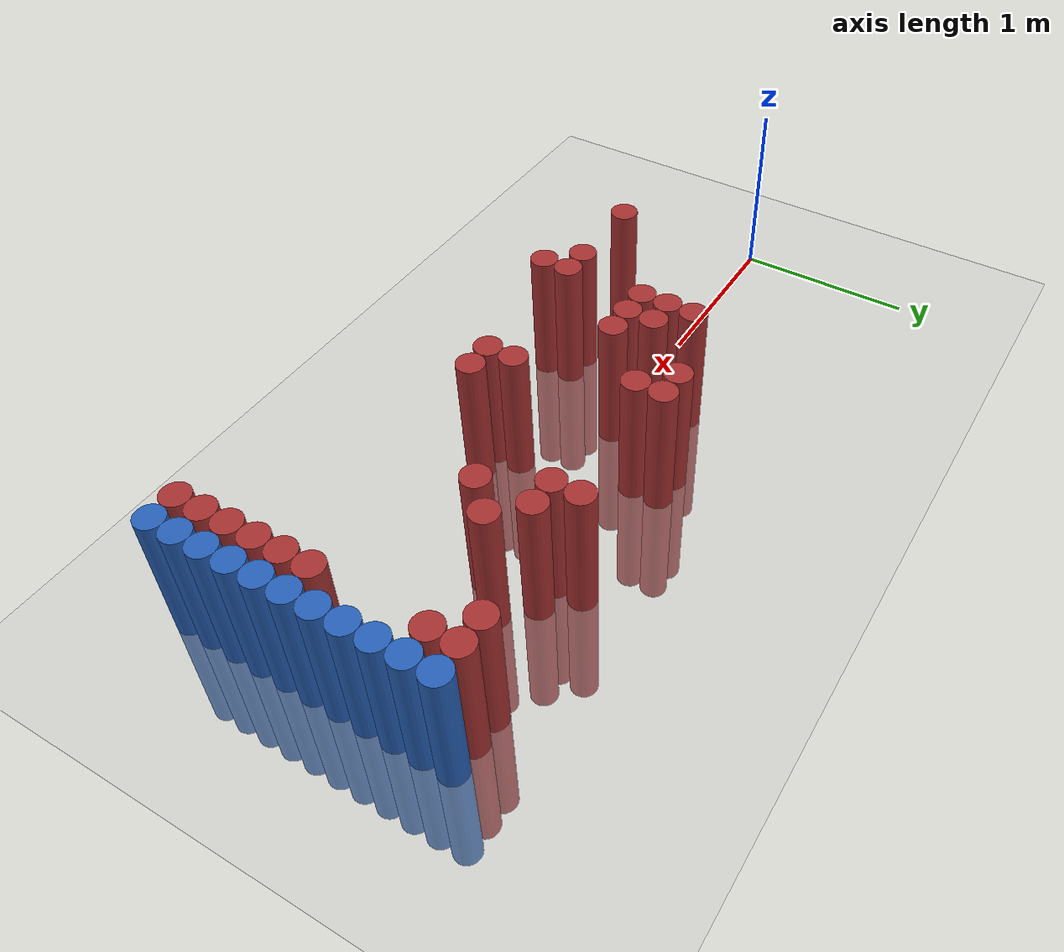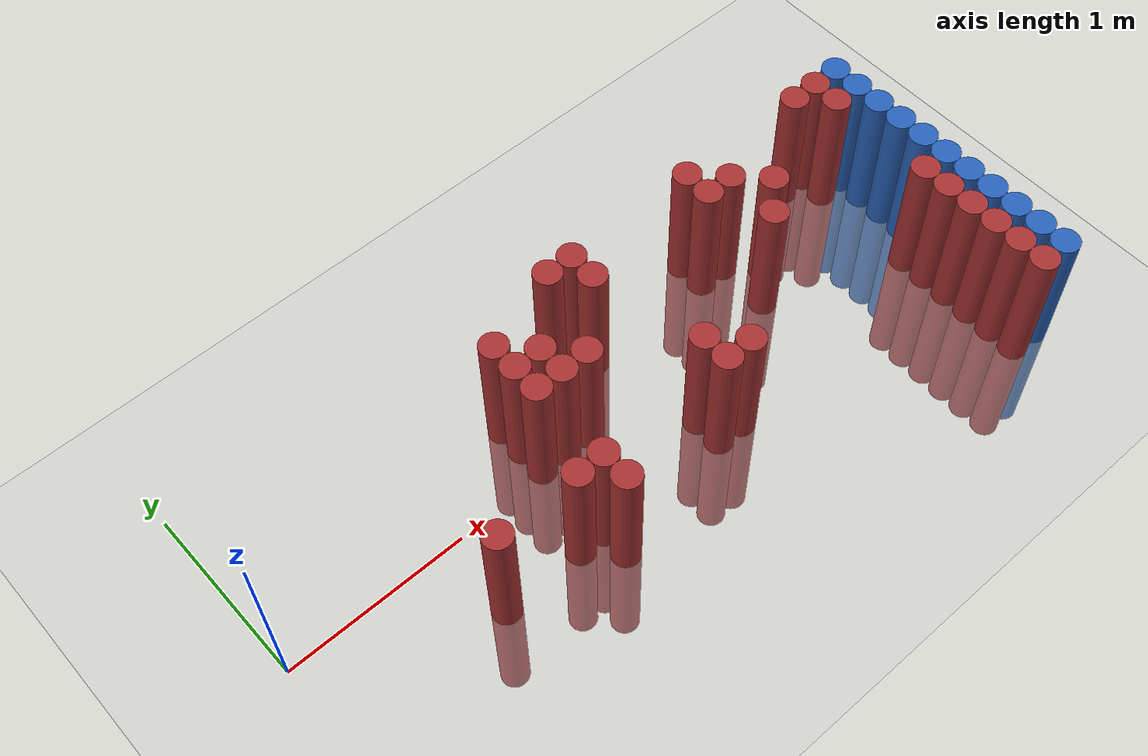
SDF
<sdf version="1.6">
 <world name="default">
  <model name="ground_plane">
   <static>1</static>
   <link name="link">
    <collision name="collision">
     <geometry><plane><normal>0 0 1</normal><size>100 100</size></plane></geometry>
     <surface><friction><ode><mu>100</mu><mu2>50</mu2></ode></friction></surface>
    </collision>
    <visual name="visual">
     <cast_shadows>0</cast_shadows>
     <geometry><plane><normal>0 0 1</normal><size>100 100</size></plane></geometry>
     <material>
      <script><uri>file://media/materials/scripts/gazebo.material</uri><name>Gazebo/Grey</name></script>
     </material>
    </visual>
   </link>
  </model>
  <model name="unit_cylinder_100">
   <static>1</static>
   <pose>3.925000 -1.025000 0.000000 0.000000 0.000000 0.000000</pose>
   <link name="link">
    <inertial>
     <mass>1</mass>
     <inertia><ixx>0.145833</ixx><ixy>0</ixy><ixz>0</ixz><iyy>0.145833</iyy><iyz>0</iyz><izz>0.125</izz></inertia>
    </inertial>
    <collision name="collision">
     <geometry><cylinder><radius>0.075000</radius><length>1.5</length></cylinder></geometry>
    </collision>
    <visual name="visual">
     <geometry><cylinder><radius>0.075000</radius><length>1.5</length></cylinder></geometry>
     <material>
      <ambient>0.152000 0.379000 0.720000 1</ambient>
      <diffuse>0.152000 0.379000 0.720000 1</diffuse>
     </material>
     <material>
      <script><name>Gazebo/Grey</name><uri>file://media/materials/scripts/gazebo.material</uri></script>
     </material>
    </visual>
   </link>
  </model>
  <model name="unit_cylinder_102">
   <static>1</static>
   <pose>3.925000 -0.875000 0.000000 0.000000 0.000000 0.000000</pose>
   <link name="link">
    <inertial>
     <mass>1</mass>
     <inertia><ixx>0.145833</ixx><ixy>0</ixy><ixz>0</ixz><iyy>0.145833</iyy><iyz>0</iyz><izz>0.125</izz></inertia>
    </inertial>
    <collision name="collision">
     <geometry><cylinder><radius>0.075000</radius><length>1.5</length></cylinder></geometry>
    </collision>
    <visual name="visual">
     <geometry><cylinder><radius>0.075000</radius><length>1.5</length></cylinder></geometry>
     <material>
      <ambient>0.152000 0.379000 0.720000 1</ambient>
      <diffuse>0.152000 0.379000 0.720000 1</diffuse>
     </material>
     <material>
      <script><name>Gazebo/Grey</name><uri>file://media/materials/scripts/gazebo.material</uri></script>
     </material>
    </visual>
   </link>
  </model>
  <model name="unit_cylinder_104">
   <static>1</static>
   <pose>3.925000 -0.725000 0.000000 0.000000 0.000000 0.000000</pose>
   <link name="link">
    <inertial>
     <mass>1</mass>
     <inertia><ixx>0.145833</ixx><ixy>0</ixy><ixz>0</ixz><iyy>0.145833</iyy><iyz>0</iyz><izz>0.125</izz></inertia>
    </inertial>
    <collision name="collision">
     <geometry><cylinder><radius>0.075000</radius><length>1.5</length></cylinder></geometry>
    </collision>
    <visual name="visual">
     <geometry><cylinder><radius>0.075000</radius><length>1.5</length></cylinder></geometry>
     <material>
      <ambient>0.152000 0.379000 0.720000 1</ambient>
      <diffuse>0.152000 0.379000 0.720000 1</diffuse>
     </material>
     <material>
      <script><name>Gazebo/Grey</name><uri>file://media/materials/scripts/gazebo.material</uri></script>
     </material>
    </visual>
   </link>
  </model>
  <model name="unit_cylinder_106">
   <static>1</static>
   <pose>3.925000 -0.575000 0.000000 0.000000 0.000000 0.000000</pose>
   <link name="link">
    <inertial>
     <mass>1</mass>
     <inertia><ixx>0.145833</ixx><ixy>0</ixy><ixz>0</ixz><iyy>0.145833</iyy><iyz>0</iyz><izz>0.125</izz></inertia>
    </inertial>
    <collision name="collision">
     <geometry><cylinder><radius>0.075000</radius><length>1.5</length></cylinder></geometry>
    </collision>
    <visual name="visual">
     <geometry><cylinder><radius>0.075000</radius><length>1.5</length></cylinder></geometry>
     <material>
      <ambient>0.152000 0.379000 0.720000 1</ambient>
      <diffuse>0.152000 0.379000 0.720000 1</diffuse>
     </material>
     <material>
      <script><name>Gazebo/Grey</name><uri>file://media/materials/scripts/gazebo.material</uri></script>
     </material>
    </visual>
   </link>
  </model>
  <model name="unit_cylinder_108">
   <static>1</static>
   <pose>3.925000 -0.425000 0.000000 0.000000 0.000000 0.000000</pose>
   <link name="link">
    <inertial>
     <mass>1</mass>
     <inertia><ixx>0.145833</ixx><ixy>0</ixy><ixz>0</ixz><iyy>0.145833</iyy><iyz>0</iyz><izz>0.125</izz></inertia>
    </inertial>
    <collision name="collision">
     <geometry><cylinder><radius>0.075000</radius><length>1.5</length></cylinder></geometry>
    </collision>
    <visual name="visual">
     <geometry><cylinder><radius>0.075000</radius><length>1.5</length></cylinder></geometry>
     <material>
      <ambient>0.152000 0.379000 0.720000 1</ambient>
      <diffuse>0.152000 0.379000 0.720000 1</diffuse>
     </material>
     <material>
      <script><name>Gazebo/Grey</name><uri>file://media/materials/scripts/gazebo.material</uri></script>
     </material>
    </visual>
   </link>
  </model>
  <model name="unit_cylinder_110">
   <static>1</static>
   <pose>3.925000 -0.275000 0.000000 0.000000 0.000000 0.000000</pose>
   <link name="link">
    <inertial>
     <mass>1</mass>
     <inertia><ixx>0.145833</ixx><ixy>0</ixy><ixz>0</ixz><iyy>0.145833</iyy><iyz>0</iyz><izz>0.125</izz></inertia>
    </inertial>
    <collision name="collision">
     <geometry><cylinder><radius>0.075000</radius><length>1.5</length></cylinder></geometry>
    </collision>
    <visual name="visual">
     <geometry><cylinder><radius>0.075000</radius><length>1.5</length></cylinder></geometry>
     <material>
      <ambient>0.152000 0.379000 0.720000 1</ambient>
      <diffuse>0.152000 0.379000 0.720000 1</diffuse>
     </material>
     <material>
      <script><name>Gazebo/Grey</name><uri>file://media/materials/scripts/gazebo.material</uri></script>
     </material>
    </visual>
   </link>
  </model>
  <model name="unit_cylinder_112">
   <static>1</static>
   <pose>3.925000 -0.125000 0.000000 0.000000 0.000000 0.000000</pose>
   <link name="link">
    <inertial>
     <mass>1</mass>
     <inertia><ixx>0.145833</ixx><ixy>0</ixy><ixz>0</ixz><iyy>0.145833</iyy><iyz>0</iyz><izz>0.125</izz></inertia>
    </inertial>
    <collision name="collision">
     <geometry><cylinder><radius>0.075000</radius><length>1.5</length></cylinder></geometry>
    </collision>
    <visual name="visual">
     <geometry><cylinder><radius>0.075000</radius><length>1.5</length></cylinder></geometry>
     <material>
      <ambient>0.152000 0.379000 0.720000 1</ambient>
      <diffuse>0.152000 0.379000 0.720000 1</diffuse>
     </material>
     <material>
      <script><name>Gazebo/Grey</name><uri>file://media/materials/scripts/gazebo.material</uri></script>
     </material>
    </visual>
   </link>
  </model>
  <model name="unit_cylinder_114">
   <static>1</static>
   <pose>3.925000 0.025000 0.000000 0.000000 0.000000 0.000000</pose>
   <link name="link">
    <inertial>
     <mass>1</mass>
     <inertia><ixx>0.145833</ixx><ixy>0</ixy><ixz>0</ixz><iyy>0.145833</iyy><iyz>0</iyz><izz>0.125</izz></inertia>
    </inertial>
    <collision name="collision">
     <geometry><cylinder><radius>0.075000</radius><length>1.5</length></cylinder></geometry>
    </collision>
    <visual name="visual">
     <geometry><cylinder><radius>0.075000</radius><length>1.5</length></cylinder></geometry>
     <material>
      <ambient>0.152000 0.379000 0.720000 1</ambient>
      <diffuse>0.152000 0.379000 0.720000 1</diffuse>
     </material>
     <material>
      <script><name>Gazebo/Grey</name><uri>file://media/materials/scripts/gazebo.material</uri></script>
     </material>
    </visual>
   </link>
  </model>
  <model name="unit_cylinder_116">
   <static>1</static>
   <pose>3.925000 0.175000 0.000000 0.000000 0.000000 0.000000</pose>
   <link name="link">
    <inertial>
     <mass>1</mass>
     <inertia><ixx>0.145833</ixx><ixy>0</ixy><ixz>0</ixz><iyy>0.145833</iyy><iyz>0</iyz><izz>0.125</izz></inertia>
    </inertial>
    <collision name="collision">
     <geometry><cylinder><radius>0.075000</radius><length>1.5</length></cylinder></geometry>
    </collision>
    <visual name="visual">
     <geometry><cylinder><radius>0.075000</radius><length>1.5</length></cylinder></geometry>
     <material>
      <ambient>0.152000 0.379000 0.720000 1</ambient>
      <diffuse>0.152000 0.379000 0.720000 1</diffuse>
     </material>
     <material>
      <script><name>Gazebo/Grey</name><uri>file://media/materials/scripts/gazebo.material</uri></script>
     </material>
    </visual>
   </link>
  </model>
  <model name="unit_cylinder_118">
   <static>1</static>
   <pose>3.925000 0.325000 0.000000 0.000000 0.000000 0.000000</pose>
   <link name="link">
    <inertial>
     <mass>1</mass>
     <inertia><ixx>0.145833</ixx><ixy>0</ixy><ixz>0</ixz><iyy>0.145833</iyy><iyz>0</iyz><izz>0.125</izz></inertia>
    </inertial>
    <collision name="collision">
     <geometry><cylinder><radius>0.075000</radius><length>1.5</length></cylinder></geometry>
    </collision>
    <visual name="visual">
     <geometry><cylinder><radius>0.075000</radius><length>1.5</length></cylinder></geometry>
     <material>
      <ambient>0.152000 0.379000 0.720000 1</ambient>
      <diffuse>0.152000 0.379000 0.720000 1</diffuse>
     </material>
     <material>
      <script><name>Gazebo/Grey</name><uri>file://media/materials/scripts/gazebo.material</uri></script>
     </material>
    </visual>
   </link>
  </model>
  <model name="unit_cylinder_120">
   <static>1</static>
   <pose>3.925000 0.475000 0.000000 0.000000 0.000000 0.000000</pose>
   <link name="link">
    <inertial>
     <mass>1</mass>
     <inertia><ixx>0.145833</ixx><ixy>0</ixy><ixz>0</ixz><iyy>0.145833</iyy><iyz>0</iyz><izz>0.125</izz></inertia>
    </inertial>
    <collision name="collision">
     <geometry><cylinder><radius>0.075000</radius><length>1.5</length></cylinder></geometry>
    </collision>
    <visual name="visual">
     <geometry><cylinder><radius>0.075000</radius><length>1.5</length></cylinder></geometry>
     <material>
      <ambient>0.152000 0.379000 0.720000 1</ambient>
      <diffuse>0.152000 0.379000 0.720000 1</diffuse>
     </material>
     <material>
      <script><name>Gazebo/Grey</name><uri>file://media/materials/scripts/gazebo.material</uri></script>
     </material>
    </visual>
   </link>
  </model>
  <model name="unit_cylinder_300">
   <static>1</static>
   <pose>0.925000 -0.425000 0.000000 0.000000 0.000000 0.000000</pose>
   <link name="link">
    <inertial>
     <mass>1</mass>
     <inertia><ixx>0.145833</ixx><ixy>0</ixy><ixz>0</ixz><iyy>0.145833</iyy><iyz>0</iyz><izz>0.125</izz></inertia>
    </inertial>
    <collision name="collision">
     <geometry><cylinder><radius>0.075000</radius><length>1.5</length></cylinder></geometry>
    </collision>
    <visual name="visual">
     <geometry><cylinder><radius>0.075000</radius><length>1.5</length></cylinder></geometry>
     <material>
      <ambient>0.648000 0.192000 0.192000 1</ambient>
      <diffuse>0.648000 0.192000 0.192000 1</diffuse>
     </material>
     <material>
      <script><name>Gazebo/Grey</name><uri>file://media/materials/scripts/gazebo.material</uri></script>
     </material>
    </visual>
   </link>
  </model>
  <model name="unit_cylinder_308">
   <static>1</static>
   <pose>1.375000 -0.425000 0.000000 0.000000 0.000000 0.000000</pose>
   <link name="link">
    <inertial>
     <mass>1</mass>
     <inertia><ixx>0.145833</ixx><ixy>0</ixy><ixz>0</ixz><iyy>0.145833</iyy><iyz>0</iyz><izz>0.125</izz></inertia>
    </inertial>
    <collision name="collision">
     <geometry><cylinder><radius>0.075000</radius><length>1.5</length></cylinder></geometry>
    </collision>
    <visual name="visual">
     <geometry><cylinder><radius>0.075000</radius><length>1.5</length></cylinder></geometry>
     <material>
      <ambient>0.648000 0.192000 0.192000 1</ambient>
      <diffuse>0.648000 0.192000 0.192000 1</diffuse>
     </material>
     <material>
      <script><name>Gazebo/Grey</name><uri>file://media/materials/scripts/gazebo.material</uri></script>
     </material>
    </visual>
   </link>
  </model>
  <model name="unit_cylinder_311">
   <static>1</static>
   <pose>1.525000 -0.575000 0.000000 0.000000 0.000000 0.000000</pose>
   <link name="link">
    <inertial>
     <mass>1</mass>
     <inertia><ixx>0.145833</ixx><ixy>0</ixy><ixz>0</ixz><iyy>0.145833</iyy><iyz>0</iyz><izz>0.125</izz></inertia>
    </inertial>
    <collision name="collision">
     <geometry><cylinder><radius>0.075000</radius><length>1.5</length></cylinder></geometry>
    </collision>
    <visual name="visual">
     <geometry><cylinder><radius>0.075000</radius><length>1.5</length></cylinder></geometry>
     <material>
      <ambient>0.648000 0.192000 0.192000 1</ambient>
      <diffuse>0.648000 0.192000 0.192000 1</diffuse>
     </material>
     <material>
      <script><name>Gazebo/Grey</name><uri>file://media/materials/scripts/gazebo.material</uri></script>
     </material>
    </visual>
   </link>
  </model>
  <model name="unit_cylinder_312">
   <static>1</static>
   <pose>1.525000 -0.425000 0.000000 0.000000 0.000000 0.000000</pose>
   <link name="link">
    <inertial>
     <mass>1</mass>
     <inertia><ixx>0.145833</ixx><ixy>0</ixy><ixz>0</ixz><iyy>0.145833</iyy><iyz>0</iyz><izz>0.125</izz></inertia>
    </inertial>
    <collision name="collision">
     <geometry><cylinder><radius>0.075000</radius><length>1.5</length></cylinder></geometry>
    </collision>
    <visual name="visual">
     <geometry><cylinder><radius>0.075000</radius><length>1.5</length></cylinder></geometry>
     <material>
      <ambient>0.648000 0.192000 0.192000 1</ambient>
      <diffuse>0.648000 0.192000 0.192000 1</diffuse>
     </material>
     <material>
      <script><name>Gazebo/Grey</name><uri>file://media/materials/scripts/gazebo.material</uri></script>
     </material>
    </visual>
   </link>
  </model>
  <model name="unit_cylinder_313">
   <static>1</static>
   <pose>1.525000 0.025000 0.000000 0.000000 0.000000 0.000000</pose>
   <link name="link">
    <inertial>
     <mass>1</mass>
     <inertia><ixx>0.145833</ixx><ixy>0</ixy><ixz>0</ixz><iyy>0.145833</iyy><iyz>0</iyz><izz>0.125</izz></inertia>
    </inertial>
    <collision name="collision">
     <geometry><cylinder><radius>0.075000</radius><length>1.5</length></cylinder></geometry>
    </collision>
    <visual name="visual">
     <geometry><cylinder><radius>0.075000</radius><length>1.5</length></cylinder></geometry>
     <material>
      <ambient>0.648000 0.192000 0.192000 1</ambient>
      <diffuse>0.648000 0.192000 0.192000 1</diffuse>
     </material>
     <material>
      <script><name>Gazebo/Grey</name><uri>file://media/materials/scripts/gazebo.material</uri></script>
     </material>
    </visual>
   </link>
  </model>
  <model name="unit_cylinder_314">
   <static>1</static>
   <pose>1.525000 0.175000 0.000000 0.000000 0.000000 0.000000</pose>
   <link name="link">
    <inertial>
     <mass>1</mass>
     <inertia><ixx>0.145833</ixx><ixy>0</ixy><ixz>0</ixz><iyy>0.145833</iyy><iyz>0</iyz><izz>0.125</izz></inertia>
    </inertial>
    <collision name="collision">
     <geometry><cylinder><radius>0.075000</radius><length>1.5</length></cylinder></geometry>
    </collision>
    <visual name="visual">
     <geometry><cylinder><radius>0.075000</radius><length>1.5</length></cylinder></geometry>
     <material>
      <ambient>0.648000 0.192000 0.192000 1</ambient>
      <diffuse>0.648000 0.192000 0.192000 1</diffuse>
     </material>
     <material>
      <script><name>Gazebo/Grey</name><uri>file://media/materials/scripts/gazebo.material</uri></script>
     </material>
    </visual>
   </link>
  </model>
  <model name="unit_cylinder_315">
   <static>1</static>
   <pose>1.525000 0.325000 0.000000 0.000000 0.000000 0.000000</pose>
   <link name="link">
    <inertial>
     <mass>1</mass>
     <inertia><ixx>0.145833</ixx><ixy>0</ixy><ixz>0</ixz><iyy>0.145833</iyy><iyz>0</iyz><izz>0.125</izz></inertia>
    </inertial>
    <collision name="collision">
     <geometry><cylinder><radius>0.075000</radius><length>1.5</length></cylinder></geometry>
    </collision>
    <visual name="visual">
     <geometry><cylinder><radius>0.075000</radius><length>1.5</length></cylinder></geometry>
     <material>
      <ambient>0.648000 0.192000 0.192000 1</ambient>
      <diffuse>0.648000 0.192000 0.192000 1</diffuse>
     </material>
     <material>
      <script><name>Gazebo/Grey</name><uri>file://media/materials/scripts/gazebo.material</uri></script>
     </material>
    </visual>
   </link>
  </model>
  <model name="unit_cylinder_316">
   <static>1</static>
   <pose>1.675000 0.025000 0.000000 0.000000 0.000000 0.000000</pose>
   <link name="link">
    <inertial>
     <mass>1</mass>
     <inertia><ixx>0.145833</ixx><ixy>0</ixy><ixz>0</ixz><iyy>0.145833</iyy><iyz>0</iyz><izz>0.125</izz></inertia>
    </inertial>
    <collision name="collision">
     <geometry><cylinder><radius>0.075000</radius><length>1.5</length></cylinder></geometry>
    </collision>
    <visual name="visual">
     <geometry><cylinder><radius>0.075000</radius><length>1.5</length></cylinder></geometry>
     <material>
      <ambient>0.648000 0.192000 0.192000 1</ambient>
      <diffuse>0.648000 0.192000 0.192000 1</diffuse>
     </material>
     <material>
      <script><name>Gazebo/Grey</name><uri>file://media/materials/scripts/gazebo.material</uri></script>
     </material>
    </visual>
   </link>
  </model>
  <model name="unit_cylinder_317">
   <static>1</static>
   <pose>1.675000 0.175000 0.000000 0.000000 0.000000 0.000000</pose>
   <link name="link">
    <inertial>
     <mass>1</mass>
     <inertia><ixx>0.145833</ixx><ixy>0</ixy><ixz>0</ixz><iyy>0.145833</iyy><iyz>0</iyz><izz>0.125</izz></inertia>
    </inertial>
    <collision name="collision">
     <geometry><cylinder><radius>0.075000</radius><length>1.5</length></cylinder></geometry>
    </collision>
    <visual name="visual">
     <geometry><cylinder><radius>0.075000</radius><length>1.5</length></cylinder></geometry>
     <material>
      <ambient>0.648000 0.192000 0.192000 1</ambient>
      <diffuse>0.648000 0.192000 0.192000 1</diffuse>
     </material>
     <material>
      <script><name>Gazebo/Grey</name><uri>file://media/materials/scripts/gazebo.material</uri></script>
     </material>
    </visual>
   </link>
  </model>
  <model name="unit_cylinder_318">
   <static>1</static>
   <pose>1.825000 0.025000 0.000000 0.000000 0.000000 0.000000</pose>
   <link name="link">
    <inertial>
     <mass>1</mass>
     <inertia><ixx>0.145833</ixx><ixy>0</ixy><ixz>0</ixz><iyy>0.145833</iyy><iyz>0</iyz><izz>0.125</izz></inertia>
    </inertial>
    <collision name="collision">
     <geometry><cylinder><radius>0.075000</radius><length>1.5</length></cylinder></geometry>
    </collision>
    <visual name="visual">
     <geometry><cylinder><radius>0.075000</radius><length>1.5</length></cylinder></geometry>
     <material>
      <ambient>0.648000 0.192000 0.192000 1</ambient>
      <diffuse>0.648000 0.192000 0.192000 1</diffuse>
     </material>
     <material>
      <script><name>Gazebo/Grey</name><uri>file://media/materials/scripts/gazebo.material</uri></script>
     </material>
    </visual>
   </link>
  </model>
  <model name="unit_cylinder_319">
   <static>1</static>
   <pose>1.975000 0.475000 0.000000 0.000000 0.000000 0.000000</pose>
   <link name="link">
    <inertial>
     <mass>1</mass>
     <inertia><ixx>0.145833</ixx><ixy>0</ixy><ixz>0</ixz><iyy>0.145833</iyy><iyz>0</iyz><izz>0.125</izz></inertia>
    </inertial>
    <collision name="collision">
     <geometry><cylinder><radius>0.075000</radius><length>1.5</length></cylinder></geometry>
    </collision>
    <visual name="visual">
     <geometry><cylinder><radius>0.075000</radius><length>1.5</length></cylinder></geometry>
     <material>
      <ambient>0.648000 0.192000 0.192000 1</ambient>
      <diffuse>0.648000 0.192000 0.192000 1</diffuse>
     </material>
     <material>
      <script><name>Gazebo/Grey</name><uri>file://media/materials/scripts/gazebo.material</uri></script>
     </material>
    </visual>
   </link>
  </model>
  <model name="unit_cylinder_323">
   <static>1</static>
   <pose>2.125000 0.325000 0.000000 0.000000 0.000000 0.000000</pose>
   <link name="link">
    <inertial>
     <mass>1</mass>
     <inertia><ixx>0.145833</ixx><ixy>0</ixy><ixz>0</ixz><iyy>0.145833</iyy><iyz>0</iyz><izz>0.125</izz></inertia>
    </inertial>
    <collision name="collision">
     <geometry><cylinder><radius>0.075000</radius><length>1.5</length></cylinder></geometry>
    </collision>
    <visual name="visual">
     <geometry><cylinder><radius>0.075000</radius><length>1.5</length></cylinder></geometry>
     <material>
      <ambient>0.648000 0.192000 0.192000 1</ambient>
      <diffuse>0.648000 0.192000 0.192000 1</diffuse>
     </material>
     <material>
      <script><name>Gazebo/Grey</name><uri>file://media/materials/scripts/gazebo.material</uri></script>
     </material>
    </visual>
   </link>
  </model>
  <model name="unit_cylinder_324">
   <static>1</static>
   <pose>2.125000 0.475000 0.000000 0.000000 0.000000 0.000000</pose>
   <link name="link">
    <inertial>
     <mass>1</mass>
     <inertia><ixx>0.145833</ixx><ixy>0</ixy><ixz>0</ixz><iyy>0.145833</iyy><iyz>0</iyz><izz>0.125</izz></inertia>
    </inertial>
    <collision name="collision">
     <geometry><cylinder><radius>0.075000</radius><length>1.5</length></cylinder></geometry>
    </collision>
    <visual name="visual">
     <geometry><cylinder><radius>0.075000</radius><length>1.5</length></cylinder></geometry>
     <material>
      <ambient>0.648000 0.192000 0.192000 1</ambient>
      <diffuse>0.648000 0.192000 0.192000 1</diffuse>
     </material>
     <material>
      <script><name>Gazebo/Grey</name><uri>file://media/materials/scripts/gazebo.material</uri></script>
     </material>
    </visual>
   </link>
  </model>
  <model name="unit_cylinder_328">
   <static>1</static>
   <pose>2.275000 -0.425000 0.000000 0.000000 0.000000 0.000000</pose>
   <link name="link">
    <inertial>
     <mass>1</mass>
     <inertia><ixx>0.145833</ixx><ixy>0</ixy><ixz>0</ixz><iyy>0.145833</iyy><iyz>0</iyz><izz>0.125</izz></inertia>
    </inertial>
    <collision name="collision">
     <geometry><cylinder><radius>0.075000</radius><length>1.5</length></cylinder></geometry>
    </collision>
    <visual name="visual">
     <geometry><cylinder><radius>0.075000</radius><length>1.5</length></cylinder></geometry>
     <material>
      <ambient>0.648000 0.192000 0.192000 1</ambient>
      <diffuse>0.648000 0.192000 0.192000 1</diffuse>
     </material>
     <material>
      <script><name>Gazebo/Grey</name><uri>file://media/materials/scripts/gazebo.material</uri></script>
     </material>
    </visual>
   </link>
  </model>
  <model name="unit_cylinder_329">
   <static>1</static>
   <pose>2.275000 -0.275000 0.000000 0.000000 0.000000 0.000000</pose>
   <link name="link">
    <inertial>
     <mass>1</mass>
     <inertia><ixx>0.145833</ixx><ixy>0</ixy><ixz>0</ixz><iyy>0.145833</iyy><iyz>0</iyz><izz>0.125</izz></inertia>
    </inertial>
    <collision name="collision">
     <geometry><cylinder><radius>0.075000</radius><length>1.5</length></cylinder></geometry>
    </collision>
    <visual name="visual">
     <geometry><cylinder><radius>0.075000</radius><length>1.5</length></cylinder></geometry>
     <material>
      <ambient>0.648000 0.192000 0.192000 1</ambient>
      <diffuse>0.648000 0.192000 0.192000 1</diffuse>
     </material>
     <material>
      <script><name>Gazebo/Grey</name><uri>file://media/materials/scripts/gazebo.material</uri></script>
     </material>
    </visual>
   </link>
  </model>
  <model name="unit_cylinder_332">
   <static>1</static>
   <pose>2.425000 -0.425000 0.000000 0.000000 0.000000 0.000000</pose>
   <link name="link">
    <inertial>
     <mass>1</mass>
     <inertia><ixx>0.145833</ixx><ixy>0</ixy><ixz>0</ixz><iyy>0.145833</iyy><iyz>0</iyz><izz>0.125</izz></inertia>
    </inertial>
    <collision name="collision">
     <geometry><cylinder><radius>0.075000</radius><length>1.5</length></cylinder></geometry>
    </collision>
    <visual name="visual">
     <geometry><cylinder><radius>0.075000</radius><length>1.5</length></cylinder></geometry>
     <material>
      <ambient>0.648000 0.192000 0.192000 1</ambient>
      <diffuse>0.648000 0.192000 0.192000 1</diffuse>
     </material>
     <material>
      <script><name>Gazebo/Grey</name><uri>file://media/materials/scripts/gazebo.material</uri></script>
     </material>
    </visual>
   </link>
  </model>
  <model name="unit_cylinder_337">
   <static>1</static>
   <pose>2.875000 0.325000 0.000000 0.000000 0.000000 0.000000</pose>
   <link name="link">
    <inertial>
     <mass>1</mass>
     <inertia><ixx>0.145833</ixx><ixy>0</ixy><ixz>0</ixz><iyy>0.145833</iyy><iyz>0</iyz><izz>0.125</izz></inertia>
    </inertial>
    <collision name="collision">
     <geometry><cylinder><radius>0.075000</radius><length>1.5</length></cylinder></geometry>
    </collision>
    <visual name="visual">
     <geometry><cylinder><radius>0.075000</radius><length>1.5</length></cylinder></geometry>
     <material>
      <ambient>0.648000 0.192000 0.192000 1</ambient>
      <diffuse>0.648000 0.192000 0.192000 1</diffuse>
     </material>
     <material>
      <script><name>Gazebo/Grey</name><uri>file://media/materials/scripts/gazebo.material</uri></script>
     </material>
    </visual>
   </link>
  </model>
  <model name="unit_cylinder_338">
   <static>1</static>
   <pose>2.875000 0.475000 0.000000 0.000000 0.000000 0.000000</pose>
   <link name="link">
    <inertial>
     <mass>1</mass>
     <inertia><ixx>0.145833</ixx><ixy>0</ixy><ixz>0</ixz><iyy>0.145833</iyy><iyz>0</iyz><izz>0.125</izz></inertia>
    </inertial>
    <collision name="collision">
     <geometry><cylinder><radius>0.075000</radius><length>1.5</length></cylinder></geometry>
    </collision>
    <visual name="visual">
     <geometry><cylinder><radius>0.075000</radius><length>1.5</length></cylinder></geometry>
     <material>
      <ambient>0.648000 0.192000 0.192000 1</ambient>
      <diffuse>0.648000 0.192000 0.192000 1</diffuse>
     </material>
     <material>
      <script><name>Gazebo/Grey</name><uri>file://media/materials/scripts/gazebo.material</uri></script>
     </material>
    </visual>
   </link>
  </model>
  <model name="unit_cylinder_340">
   <static>1</static>
   <pose>3.025000 0.025000 0.000000 0.000000 0.000000 0.000000</pose>
   <link name="link">
    <inertial>
     <mass>1</mass>
     <inertia><ixx>0.145833</ixx><ixy>0</ixy><ixz>0</ixz><iyy>0.145833</iyy><iyz>0</iyz><izz>0.125</izz></inertia>
    </inertial>
    <collision name="collision">
     <geometry><cylinder><radius>0.075000</radius><length>1.5</length></cylinder></geometry>
    </collision>
    <visual name="visual">
     <geometry><cylinder><radius>0.075000</radius><length>1.5</length></cylinder></geometry>
     <material>
      <ambient>0.648000 0.192000 0.192000 1</ambient>
      <diffuse>0.648000 0.192000 0.192000 1</diffuse>
     </material>
     <material>
      <script><name>Gazebo/Grey</name><uri>file://media/materials/scripts/gazebo.material</uri></script>
     </material>
    </visual>
   </link>
  </model>
  <model name="unit_cylinder_341">
   <static>1</static>
   <pose>3.025000 0.325000 0.000000 0.000000 0.000000 0.000000</pose>
   <link name="link">
    <inertial>
     <mass>1</mass>
     <inertia><ixx>0.145833</ixx><ixy>0</ixy><ixz>0</ixz><iyy>0.145833</iyy><iyz>0</iyz><izz>0.125</izz></inertia>
    </inertial>
    <collision name="collision">
     <geometry><cylinder><radius>0.075000</radius><length>1.5</length></cylinder></geometry>
    </collision>
    <visual name="visual">
     <geometry><cylinder><radius>0.075000</radius><length>1.5</length></cylinder></geometry>
     <material>
      <ambient>0.648000 0.192000 0.192000 1</ambient>
      <diffuse>0.648000 0.192000 0.192000 1</diffuse>
     </material>
     <material>
      <script><name>Gazebo/Grey</name><uri>file://media/materials/scripts/gazebo.material</uri></script>
     </material>
    </visual>
   </link>
  </model>
  <model name="unit_cylinder_342">
   <static>1</static>
   <pose>3.175000 0.175000 0.000000 0.000000 0.000000 0.000000</pose>
   <link name="link">
    <inertial>
     <mass>1</mass>
     <inertia><ixx>0.145833</ixx><ixy>0</ixy><ixz>0</ixz><iyy>0.145833</iyy><iyz>0</iyz><izz>0.125</izz></inertia>
    </inertial>
    <collision name="collision">
     <geometry><cylinder><radius>0.075000</radius><length>1.5</length></cylinder></geometry>
    </collision>
    <visual name="visual">
     <geometry><cylinder><radius>0.075000</radius><length>1.5</length></cylinder></geometry>
     <material>
      <ambient>0.648000 0.192000 0.192000 1</ambient>
      <diffuse>0.648000 0.192000 0.192000 1</diffuse>
     </material>
     <material>
      <script><name>Gazebo/Grey</name><uri>file://media/materials/scripts/gazebo.material</uri></script>
     </material>
    </visual>
   </link>
  </model>
  <model name="unit_cylinder_346">
   <static>1</static>
   <pose>3.625000 0.475000 0.000000 0.000000 0.000000 0.000000</pose>
   <link name="link">
    <inertial>
     <mass>1</mass>
     <inertia><ixx>0.145833</ixx><ixy>0</ixy><ixz>0</ixz><iyy>0.145833</iyy><iyz>0</iyz><izz>0.125</izz></inertia>
    </inertial>
    <collision name="collision">
     <geometry><cylinder><radius>0.075000</radius><length>1.5</length></cylinder></geometry>
    </collision>
    <visual name="visual">
     <geometry><cylinder><radius>0.075000</radius><length>1.5</length></cylinder></geometry>
     <material>
      <ambient>0.648000 0.192000 0.192000 1</ambient>
      <diffuse>0.648000 0.192000 0.192000 1</diffuse>
     </material>
     <material>
      <script><name>Gazebo/Grey</name><uri>file://media/materials/scripts/gazebo.material</uri></script>
     </material>
    </visual>
   </link>
  </model>
  <model name="unit_cylinder_351">
   <static>1</static>
   <pose>3.775000 -1.025000 0.000000 0.000000 0.000000 0.000000</pose>
   <link name="link">
    <inertial>
     <mass>1</mass>
     <inertia><ixx>0.145833</ixx><ixy>0</ixy><ixz>0</ixz><iyy>0.145833</iyy><iyz>0</iyz><izz>0.125</izz></inertia>
    </inertial>
    <collision name="collision">
     <geometry><cylinder><radius>0.075000</radius><length>1.5</length></cylinder></geometry>
    </collision>
    <visual name="visual">
     <geometry><cylinder><radius>0.075000</radius><length>1.5</length></cylinder></geometry>
     <material>
      <ambient>0.648000 0.192000 0.192000 1</ambient>
      <diffuse>0.648000 0.192000 0.192000 1</diffuse>
     </material>
     <material>
      <script><name>Gazebo/Grey</name><uri>file://media/materials/scripts/gazebo.material</uri></script>
     </material>
    </visual>
   </link>
  </model>
  <model name="unit_cylinder_352">
   <static>1</static>
   <pose>3.775000 -0.875000 0.000000 0.000000 0.000000 0.000000</pose>
   <link name="link">
    <inertial>
     <mass>1</mass>
     <inertia><ixx>0.145833</ixx><ixy>0</ixy><ixz>0</ixz><iyy>0.145833</iyy><iyz>0</iyz><izz>0.125</izz></inertia>
    </inertial>
    <collision name="collision">
     <geometry><cylinder><radius>0.075000</radius><length>1.5</length></cylinder></geometry>
    </collision>
    <visual name="visual">
     <geometry><cylinder><radius>0.075000</radius><length>1.5</length></cylinder></geometry>
     <material>
      <ambient>0.648000 0.192000 0.192000 1</ambient>
      <diffuse>0.648000 0.192000 0.192000 1</diffuse>
     </material>
     <material>
      <script><name>Gazebo/Grey</name><uri>file://media/materials/scripts/gazebo.material</uri></script>
     </material>
    </visual>
   </link>
  </model>
  <model name="unit_cylinder_353">
   <static>1</static>
   <pose>3.775000 -0.725000 0.000000 0.000000 0.000000 0.000000</pose>
   <link name="link">
    <inertial>
     <mass>1</mass>
     <inertia><ixx>0.145833</ixx><ixy>0</ixy><ixz>0</ixz><iyy>0.145833</iyy><iyz>0</iyz><izz>0.125</izz></inertia>
    </inertial>
    <collision name="collision">
     <geometry><cylinder><radius>0.075000</radius><length>1.5</length></cylinder></geometry>
    </collision>
    <visual name="visual">
     <geometry><cylinder><radius>0.075000</radius><length>1.5</length></cylinder></geometry>
     <material>
      <ambient>0.648000 0.192000 0.192000 1</ambient>
      <diffuse>0.648000 0.192000 0.192000 1</diffuse>
     </material>
     <material>
      <script><name>Gazebo/Grey</name><uri>file://media/materials/scripts/gazebo.material</uri></script>
     </material>
    </visual>
   </link>
  </model>
  <model name="unit_cylinder_354">
   <static>1</static>
   <pose>3.775000 -0.575000 0.000000 0.000000 0.000000 0.000000</pose>
   <link name="link">
    <inertial>
     <mass>1</mass>
     <inertia><ixx>0.145833</ixx><ixy>0</ixy><ixz>0</ixz><iyy>0.145833</iyy><iyz>0</iyz><izz>0.125</izz></inertia>
    </inertial>
    <collision name="collision">
     <geometry><cylinder><radius>0.075000</radius><length>1.5</length></cylinder></geometry>
    </collision>
    <visual name="visual">
     <geometry><cylinder><radius>0.075000</radius><length>1.5</length></cylinder></geometry>
     <material>
      <ambient>0.648000 0.192000 0.192000 1</ambient>
      <diffuse>0.648000 0.192000 0.192000 1</diffuse>
     </material>
     <material>
      <script><name>Gazebo/Grey</name><uri>file://media/materials/scripts/gazebo.material</uri></script>
     </material>
    </visual>
   </link>
  </model>
  <model name="unit_cylinder_355">
   <static>1</static>
   <pose>3.775000 -0.425000 0.000000 0.000000 0.000000 0.000000</pose>
   <link name="link">
    <inertial>
     <mass>1</mass>
     <inertia><ixx>0.145833</ixx><ixy>0</ixy><ixz>0</ixz><iyy>0.145833</iyy><iyz>0</iyz><izz>0.125</izz></inertia>
    </inertial>
    <collision name="collision">
     <geometry><cylinder><radius>0.075000</radius><length>1.5</length></cylinder></geometry>
    </collision>
    <visual name="visual">
     <geometry><cylinder><radius>0.075000</radius><length>1.5</length></cylinder></geometry>
     <material>
      <ambient>0.648000 0.192000 0.192000 1</ambient>
      <diffuse>0.648000 0.192000 0.192000 1</diffuse>
     </material>
     <material>
      <script><name>Gazebo/Grey</name><uri>file://media/materials/scripts/gazebo.material</uri></script>
     </material>
    </visual>
   </link>
  </model>
  <model name="unit_cylinder_356">
   <static>1</static>
   <pose>3.775000 -0.275000 0.000000 0.000000 0.000000 0.000000</pose>
   <link name="link">
    <inertial>
     <mass>1</mass>
     <inertia><ixx>0.145833</ixx><ixy>0</ixy><ixz>0</ixz><iyy>0.145833</iyy><iyz>0</iyz><izz>0.125</izz></inertia>
    </inertial>
    <collision name="collision">
     <geometry><cylinder><radius>0.075000</radius><length>1.5</length></cylinder></geometry>
    </collision>
    <visual name="visual">
     <geometry><cylinder><radius>0.075000</radius><length>1.5</length></cylinder></geometry>
     <material>
      <ambient>0.648000 0.192000 0.192000 1</ambient>
      <diffuse>0.648000 0.192000 0.192000 1</diffuse>
     </material>
     <material>
      <script><name>Gazebo/Grey</name><uri>file://media/materials/scripts/gazebo.material</uri></script>
     </material>
    </visual>
   </link>
  </model>
  <model name="unit_cylinder_357">
   <static>1</static>
   <pose>3.775000 0.325000 0.000000 0.000000 0.000000 0.000000</pose>
   <link name="link">
    <inertial>
     <mass>1</mass>
     <inertia><ixx>0.145833</ixx><ixy>0</ixy><ixz>0</ixz><iyy>0.145833</iyy><iyz>0</iyz><izz>0.125</izz></inertia>
    </inertial>
    <collision name="collision">
     <geometry><cylinder><radius>0.075000</radius><length>1.5</length></cylinder></geometry>
    </collision>
    <visual name="visual">
     <geometry><cylinder><radius>0.075000</radius><length>1.5</length></cylinder></geometry>
     <material>
      <ambient>0.648000 0.192000 0.192000 1</ambient>
      <diffuse>0.648000 0.192000 0.192000 1</diffuse>
     </material>
     <material>
      <script><name>Gazebo/Grey</name><uri>file://media/materials/scripts/gazebo.material</uri></script>
     </material>
    </visual>
   </link>
  </model>
  <model name="unit_cylinder_358">
   <static>1</static>
   <pose>3.775000 0.475000 0.000000 0.000000 0.000000 0.000000</pose>
   <link name="link">
    <inertial>
     <mass>1</mass>
     <inertia><ixx>0.145833</ixx><ixy>0</ixy><ixz>0</ixz><iyy>0.145833</iyy><iyz>0</iyz><izz>0.125</izz></inertia>
    </inertial>
    <collision name="collision">
     <geometry><cylinder><radius>0.075000</radius><length>1.5</length></cylinder></geometry>
    </collision>
    <visual name="visual">
     <geometry><cylinder><radius>0.075000</radius><length>1.5</length></cylinder></geometry>
     <material>
      <ambient>0.648000 0.192000 0.192000 1</ambient>
      <diffuse>0.648000 0.192000 0.192000 1</diffuse>
     </material>
     <material>
      <script><name>Gazebo/Grey</name><uri>file://media/materials/scripts/gazebo.material</uri></script>
     </material>
    </visual>
   </link>
  </model>
  <model name="unit_cylinder_373">
   <static>1</static>
   <pose>3.925000 -1.025000 0.000000 0.000000 0.000000 0.000000</pose>
   <link name="link">
    <inertial>
     <mass>1</mass>
     <inertia><ixx>0.145833</ixx><ixy>0</ixy><ixz>0</ixz><iyy>0.145833</iyy><iyz>0</iyz><izz>0.125</izz></inertia>
    </inertial>
    <collision name="collision">
     <geometry><cylinder><radius>0.075000</radius><length>1.5</length></cylinder></geometry>
    </collision>
    <visual name="visual">
     <geometry><cylinder><radius>0.075000</radius><length>1.5</length></cylinder></geometry>
     <material>
      <ambient>0.152000 0.379000 0.720000 1</ambient>
      <diffuse>0.152000 0.379000 0.720000 1</diffuse>
     </material>
     <material>
      <script><name>Gazebo/Grey</name><uri>file://media/materials/scripts/gazebo.material</uri></script>
     </material>
    </visual>
   </link>
  </model>
  <model name="unit_cylinder_374">
   <static>1</static>
   <pose>3.925000 -0.875000 0.000000 0.000000 0.000000 0.000000</pose>
   <link name="link">
    <inertial>
     <mass>1</mass>
     <inertia><ixx>0.145833</ixx><ixy>0</ixy><ixz>0</ixz><iyy>0.145833</iyy><iyz>0</iyz><izz>0.125</izz></inertia>
    </inertial>
    <collision name="collision">
     <geometry><cylinder><radius>0.075000</radius><length>1.5</length></cylinder></geometry>
    </collision>
    <visual name="visual">
     <geometry><cylinder><radius>0.075000</radius><length>1.5</length></cylinder></geometry>
     <material>
      <ambient>0.152000 0.379000 0.720000 1</ambient>
      <diffuse>0.152000 0.379000 0.720000 1</diffuse>
     </material>
     <material>
      <script><name>Gazebo/Grey</name><uri>file://media/materials/scripts/gazebo.material</uri></script>
     </material>
    </visual>
   </link>
  </model>
  <model name="unit_cylinder_375">
   <static>1</static>
   <pose>3.925000 -0.725000 0.000000 0.000000 0.000000 0.000000</pose>
   <link name="link">
    <inertial>
     <mass>1</mass>
     <inertia><ixx>0.145833</ixx><ixy>0</ixy><ixz>0</ixz><iyy>0.145833</iyy><iyz>0</iyz><izz>0.125</izz></inertia>
    </inertial>
    <collision name="collision">
     <geometry><cylinder><radius>0.075000</radius><length>1.5</length></cylinder></geometry>
    </collision>
    <visual name="visual">
     <geometry><cylinder><radius>0.075000</radius><length>1.5</length></cylinder></geometry>
     <material>
      <ambient>0.152000 0.379000 0.720000 1</ambient>
      <diffuse>0.152000 0.379000 0.720000 1</diffuse>
     </material>
     <material>
      <script><name>Gazebo/Grey</name><uri>file://media/materials/scripts/gazebo.material</uri></script>
     </material>
    </visual>
   </link>
  </model>
  <model name="unit_cylinder_376">
   <static>1</static>
   <pose>3.925000 -0.575000 0.000000 0.000000 0.000000 0.000000</pose>
   <link name="link">
    <inertial>
     <mass>1</mass>
     <inertia><ixx>0.145833</ixx><ixy>0</ixy><ixz>0</ixz><iyy>0.145833</iyy><iyz>0</iyz><izz>0.125</izz></inertia>
    </inertial>
    <collision name="collision">
     <geometry><cylinder><radius>0.075000</radius><length>1.5</length></cylinder></geometry>
    </collision>
    <visual name="visual">
     <geometry><cylinder><radius>0.075000</radius><length>1.5</length></cylinder></geometry>
     <material>
      <ambient>0.152000 0.379000 0.720000 1</ambient>
      <diffuse>0.152000 0.379000 0.720000 1</diffuse>
     </material>
     <material>
      <script><name>Gazebo/Grey</name><uri>file://media/materials/scripts/gazebo.material</uri></script>
     </material>
    </visual>
   </link>
  </model>
  <model name="unit_cylinder_377">
   <static>1</static>
   <pose>3.925000 -0.425000 0.000000 0.000000 0.000000 0.000000</pose>
   <link name="link">
    <inertial>
     <mass>1</mass>
     <inertia><ixx>0.145833</ixx><ixy>0</ixy><ixz>0</ixz><iyy>0.145833</iyy><iyz>0</iyz><izz>0.125</izz></inertia>
    </inertial>
    <collision name="collision">
     <geometry><cylinder><radius>0.075000</radius><length>1.5</length></cylinder></geometry>
    </collision>
    <visual name="visual">
     <geometry><cylinder><radius>0.075000</radius><length>1.5</length></cylinder></geometry>
     <material>
      <ambient>0.152000 0.379000 0.720000 1</ambient>
      <diffuse>0.152000 0.379000 0.720000 1</diffuse>
     </material>
     <material>
      <script><name>Gazebo/Grey</name><uri>file://media/materials/scripts/gazebo.material</uri></script>
     </material>
    </visual>
   </link>
  </model>
  <model name="unit_cylinder_378">
   <static>1</static>
   <pose>3.925000 -0.275000 0.000000 0.000000 0.000000 0.000000</pose>
   <link name="link">
    <inertial>
     <mass>1</mass>
     <inertia><ixx>0.145833</ixx><ixy>0</ixy><ixz>0</ixz><iyy>0.145833</iyy><iyz>0</iyz><izz>0.125</izz></inertia>
    </inertial>
    <collision name="collision">
     <geometry><cylinder><radius>0.075000</radius><length>1.5</length></cylinder></geometry>
    </collision>
    <visual name="visual">
     <geometry><cylinder><radius>0.075000</radius><length>1.5</length></cylinder></geometry>
     <material>
      <ambient>0.152000 0.379000 0.720000 1</ambient>
      <diffuse>0.152000 0.379000 0.720000 1</diffuse>
     </material>
     <material>
      <script><name>Gazebo/Grey</name><uri>file://media/materials/scripts/gazebo.material</uri></script>
     </material>
    </visual>
   </link>
  </model>
  <model name="unit_cylinder_379">
   <static>1</static>
   <pose>3.925000 -0.125000 0.000000 0.000000 0.000000 0.000000</pose>
   <link name="link">
    <inertial>
     <mass>1</mass>
     <inertia><ixx>0.145833</ixx><ixy>0</ixy><ixz>0</ixz><iyy>0.145833</iyy><iyz>0</iyz><izz>0.125</izz></inertia>
    </inertial>
    <collision name="collision">
     <geometry><cylinder><radius>0.075000</radius><length>1.5</length></cylinder></geometry>
    </collision>
    <visual name="visual">
     <geometry><cylinder><radius>0.075000</radius><length>1.5</length></cylinder></geometry>
     <material>
      <ambient>0.152000 0.379000 0.720000 1</ambient>
      <diffuse>0.152000 0.379000 0.720000 1</diffuse>
     </material>
     <material>
      <script><name>Gazebo/Grey</name><uri>file://media/materials/scripts/gazebo.material</uri></script>
     </material>
    </visual>
   </link>
  </model>
  <model name="unit_cylinder_380">
   <static>1</static>
   <pose>3.925000 0.025000 0.000000 0.000000 0.000000 0.000000</pose>
   <link name="link">
    <inertial>
     <mass>1</mass>
     <inertia><ixx>0.145833</ixx><ixy>0</ixy><ixz>0</ixz><iyy>0.145833</iyy><iyz>0</iyz><izz>0.125</izz></inertia>
    </inertial>
    <collision name="collision">
     <geometry><cylinder><radius>0.075000</radius><length>1.5</length></cylinder></geometry>
    </collision>
    <visual name="visual">
     <geometry><cylinder><radius>0.075000</radius><length>1.5</length></cylinder></geometry>
     <material>
      <ambient>0.152000 0.379000 0.720000 1</ambient>
      <diffuse>0.152000 0.379000 0.720000 1</diffuse>
     </material>
     <material>
      <script><name>Gazebo/Grey</name><uri>file://media/materials/scripts/gazebo.material</uri></script>
     </material>
    </visual>
   </link>
  </model>
  <model name="unit_cylinder_381">
   <static>1</static>
   <pose>3.925000 0.175000 0.000000 0.000000 0.000000 0.000000</pose>
   <link name="link">
    <inertial>
     <mass>1</mass>
     <inertia><ixx>0.145833</ixx><ixy>0</ixy><ixz>0</ixz><iyy>0.145833</iyy><iyz>0</iyz><izz>0.125</izz></inertia>
    </inertial>
    <collision name="collision">
     <geometry><cylinder><radius>0.075000</radius><length>1.5</length></cylinder></geometry>
    </collision>
    <visual name="visual">
     <geometry><cylinder><radius>0.075000</radius><length>1.5</length></cylinder></geometry>
     <material>
      <ambient>0.152000 0.379000 0.720000 1</ambient>
      <diffuse>0.152000 0.379000 0.720000 1</diffuse>
     </material>
     <material>
      <script><name>Gazebo/Grey</name><uri>file://media/materials/scripts/gazebo.material</uri></script>
     </material>
    </visual>
   </link>
  </model>
  <model name="unit_cylinder_382">
   <static>1</static>
   <pose>3.925000 0.325000 0.000000 0.000000 0.000000 0.000000</pose>
   <link name="link">
    <inertial>
     <mass>1</mass>
     <inertia><ixx>0.145833</ixx><ixy>0</ixy><ixz>0</ixz><iyy>0.145833</iyy><iyz>0</iyz><izz>0.125</izz></inertia>
    </inertial>
    <collision name="collision">
     <geometry><cylinder><radius>0.075000</radius><length>1.5</length></cylinder></geometry>
    </collision>
    <visual name="visual">
     <geometry><cylinder><radius>0.075000</radius><length>1.5</length></cylinder></geometry>
     <material>
      <ambient>0.152000 0.379000 0.720000 1</ambient>
      <diffuse>0.152000 0.379000 0.720000 1</diffuse>
     </material>
     <material>
      <script><name>Gazebo/Grey</name><uri>file://media/materials/scripts/gazebo.material</uri></script>
     </material>
    </visual>
   </link>
  </model>
  <model name="unit_cylinder_383">
   <static>1</static>
   <pose>3.925000 0.475000 0.000000 0.000000 0.000000 0.000000</pose>
   <link name="link">
    <inertial>
     <mass>1</mass>
     <inertia><ixx>0.145833</ixx><ixy>0</ixy><ixz>0</ixz><iyy>0.145833</iyy><iyz>0</iyz><izz>0.125</izz></inertia>
    </inertial>
    <collision name="collision">
     <geometry><cylinder><radius>0.075000</radius><length>1.5</length></cylinder></geometry>
    </collision>
    <visual name="visual">
     <geometry><cylinder><radius>0.075000</radius><length>1.5</length></cylinder></geometry>
     <material>
      <ambient>0.152000 0.379000 0.720000 1</ambient>
      <diffuse>0.152000 0.379000 0.720000 1</diffuse>
     </material>
     <material>
      <script><name>Gazebo/Grey</name><uri>file://media/materials/scripts/gazebo.material</uri></script>
     </material>
    </visual>
   </link>
  </model>
 </world>
</sdf>
